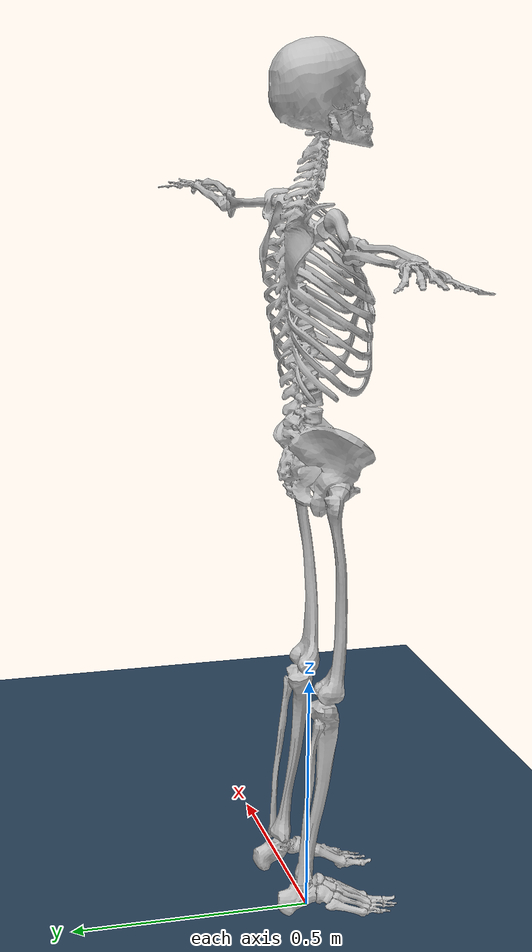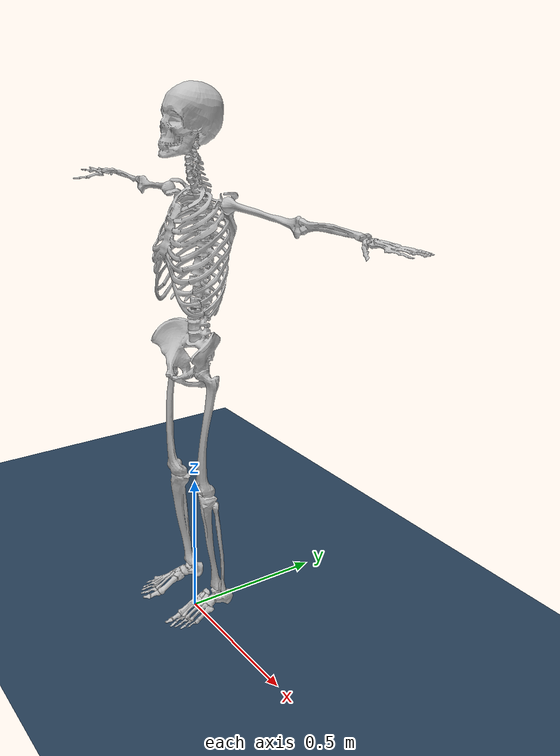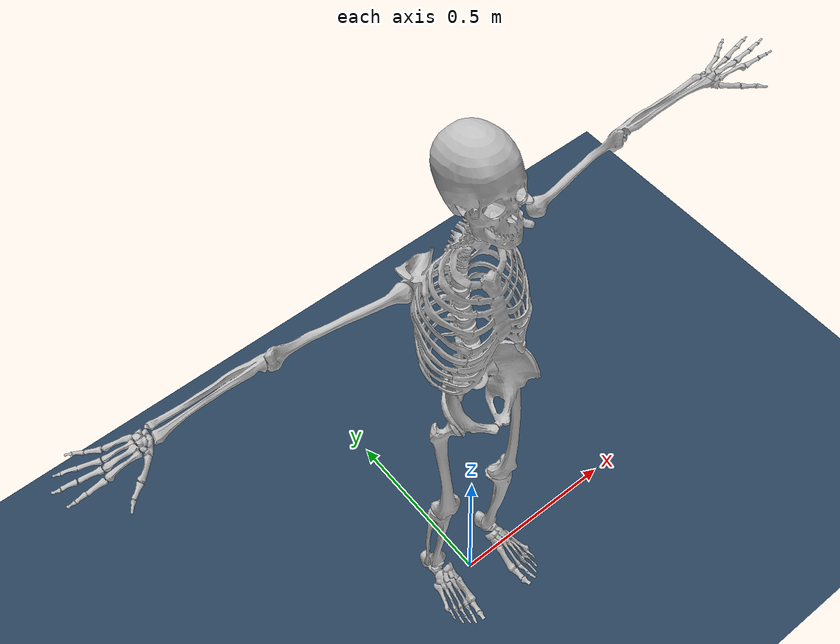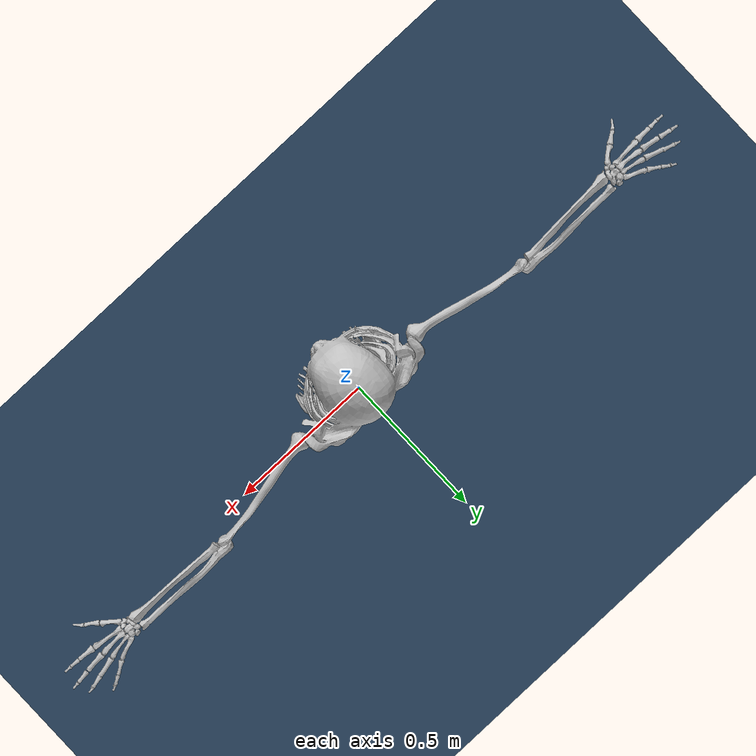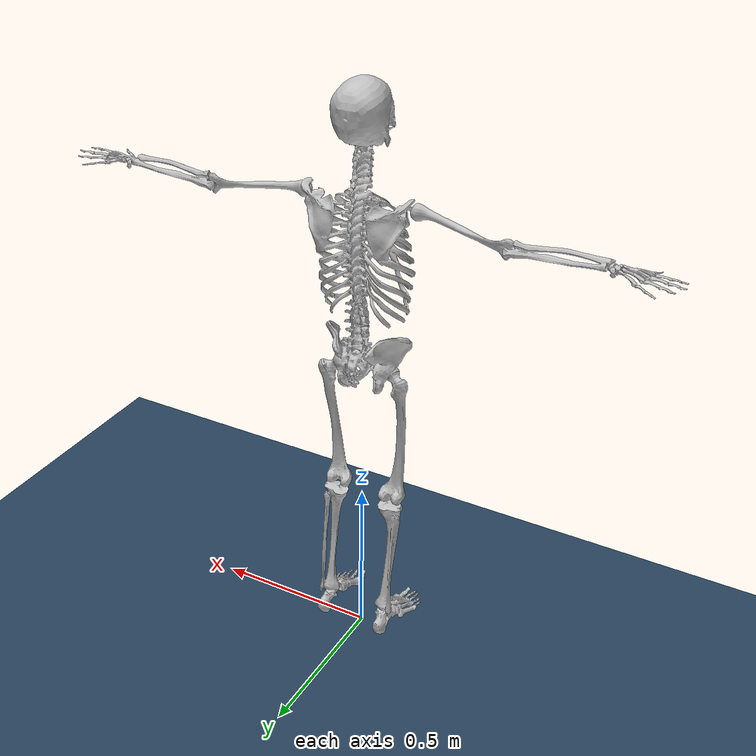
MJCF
<mujoco model="human_skeleton">
  <option iterations="50" timestep="0.001" solver="PGS" gravity="0 0 -9.81" />

  <compiler angle="radian" meshdir="meshes" eulerseq="zyx" autolimits="true" />

  <default>
    <joint limited="true" damping="0.01" armature="0.01" frictionloss="0.01" />
    <geom condim="4" contype="1" conaffinity="15" friction="0.9 0.2 0.2" solref="0.001 2" />
    <motor ctrllimited="true" forcelimited="true"/>
    <position ctrllimited="true" forcelimited="true"/>
    <default class="human_link">
      <geom material="human_link" condim="3" contype="2" conaffinity="0" />
    </default>
  </default>

  <asset>
    <mesh name="pelvis" content_type="model/stl" file="pelvis.stl" />
    <mesh name="torso" content_type="model/stl" file="torso.stl" />
    <mesh name="upper_arm_L" content_type="model/stl" file="upper_arm_L.stl" />
    <mesh name="forearm_L" content_type="model/stl" file="forearm_L.stl" />
    <mesh name="hand_L" content_type="model/stl" file="hand_L.stl" />
    <mesh name="upper_arm_R" content_type="model/stl" file="upper_arm_R.stl" />
    <mesh name="forearm_R" content_type="model/stl" file="forearm_R.stl" />
    <mesh name="hand_R" content_type="model/stl" file="hand_R.stl" />
    <mesh name="thigh_L" content_type="model/stl" file="thigh_L.stl" />
    <mesh name="shank_L" content_type="model/stl" file="shank_L.stl" />
    <mesh name="foot_L" content_type="model/stl" file="foot_L.stl" />
    <mesh name="thigh_R" content_type="model/stl" file="thigh_R.stl" />
    <mesh name="shank_R" content_type="model/stl" file="shank_R.stl" />
    <mesh name="foot_R" content_type="model/stl" file="foot_R.stl" />
    <material name="human_link" rgba="0.5 0.9 0.2 1" />
    <texture type="skybox" builtin="gradient" rgb1="0.52734375 0.8046875 0.91796875" rgb2="0 0 0" width="512" height="3072" />
    <texture name="grid" type="2d" builtin="checker" width="512" height="512" rgb1=".1 .2 .3" rgb2=".2 .3 .4" />
    <material name="grid" texture="grid" texrepeat="1 1" texuniform="true" reflectance=".2" />
  </asset>

  <worldbody>
    <light directional="true" diffuse="0.4 0.4 0.4" specular="0.1 0.1 0.1" pos="0 0 5.0" dir="0 0 -1" castshadow="false" />
    <light directional="true" diffuse="0.6 0.6 0.6" specular="0.2 0.2 0.2" pos="0 0 4" dir="0 0 -1" />
    <geom name="ground" type="plane" pos="0 0 0" size="100 100 0.001" quat="1 0 0 0" material="grid" condim="3" conaffinity="15" />
    <camera name="fixed" pos="0 -3.0 1.6444066293796307" xyaxes="1 0 0 0 0 1" />
    <camera name="track" mode="trackcom" pos="0 -3.0 1.6444066293796307" xyaxes="1 0 0 0 0 1" />
    <body name="root" pos="0 0 1.11" quat="0.7071 0.7071 0 0">
      <site name="imu" size="0.01" pos="0 0 0" />
      <geom pos="0 0.105 -0.01" quat="1 0 0 0" type="mesh" rgba="0.752941 0.752941 0.752941 1" mesh="pelvis" class="human_link" />
      <body name="link_torso">
        <inertial pos="0 0.24 -0.01" mass="27.3" diaginertia="0.4135 0.4135 0.4135" />
        <joint name="joint_waist" pos="0 0 0" axis="1 0 0" range="-3.1416 3.1416" actuatorfrcrange="-500 500" />
        <geom pos="0 0.105 -0.01" quat="1 0 0 0" type="mesh" rgba="0.752941 0.752941 0.752941 1" mesh="torso" class="human_link" />
        <body name="link_shoulder_L1" pos="0.17 0.34 -0.01">
          <inertial pos="0 0 0" mass="0.001" diaginertia="1e-06 1e-06 1e-06" />
          <joint name="joint_shoulder_L1" pos="0 0 0" axis="1 0 0" range="-3.1416 3.1416" actuatorfrcrange="-500 500" />
          <body name="link_shoulder_L2">
            <inertial pos="0 0 0" mass="0.001" diaginertia="1e-06 1e-06 1e-06" />
            <joint name="joint_shoulder_L2" pos="0 0 0" axis="0 0 1" range="-3.1416 3.1416" actuatorfrcrange="-500 500" />
            <body name="link_upper_arm_L">
              <inertial pos="0.13 0 0" mass="1.701" diaginertia="0.004 0.004 0.004" />
              <joint name="joint_shoulder_L3" pos="0 0 0" axis="1 0 0" range="-3.1416 3.1416" actuatorfrcrange="-500 500" />
              <geom pos="-0.17 -0.235 0" quat="1 0 0 0" type="mesh" rgba="0.752941 0.752941 0.752941 1" mesh="upper_arm_L" class="human_link" />
              <body name="link_elbow_L1" pos="0.27 -0.015 -0.05">
                <inertial pos="0 0 0" mass="0.001" diaginertia="1e-06 1e-06 1e-06" />
                <joint name="joint_elbow_L1" pos="0 0 0" axis="0 1 0" range="-3.1416 3.1416" actuatorfrcrange="-500 500" />
                <body name="link_forearm_L">
                  <inertial pos="0.12 0 0" mass="0.875" diaginertia="0.0013 0.0013 0.0013" />
                  <joint name="joint_elbow_L2" pos="0 0 0" axis="1 0 0" range="-3.1416 3.1416" actuatorfrcrange="-500 500" />
                  <geom pos="-0.44 -0.22 0.05" quat="1 0 0 0" type="mesh" rgba="0.752941 0.752941 0.752941 1" mesh="forearm_L" class="human_link" />
                  <body name="link_wrist_L1" pos="0.25 0.01 0">
                    <inertial pos="0 0 0" mass="0.001" diaginertia="1e-06 1e-06 1e-06" />
                    <joint name="joint_wrist_L1" pos="0 0 0" axis="0 1 0" range="-3.1416 3.1416" actuatorfrcrange="-500 500" />
                    <body name="link_hand_L">
                      <inertial pos="0.05 0 0" mass="0.448" diaginertia="0.00043717 0.00043717 0.00043717" />
                      <joint name="joint_wrist_L2" pos="0 0 0" axis="0 0 1" range="-3.1416 3.1416" actuatorfrcrange="-500 500" />
                      <geom pos="-0.69 -0.23 0.05" quat="1 0 0 0" type="mesh" rgba="0.752941 0.752941 0.752941 1" mesh="hand_L" class="human_link" />
                    </body>
                  </body>
                </body>
              </body>
            </body>
          </body>
        </body>
        <body name="link_shoulder_R1" pos="-0.17 0.34 -0.01">
          <inertial pos="0 0 0" mass="0.001" diaginertia="1e-06 1e-06 1e-06" />
          <joint name="joint_shoulder_R1" pos="0 0 0" axis="1 0 0" range="-3.1416 3.1416" actuatorfrcrange="-500 500" />
          <body name="link_shoulder_R2">
            <inertial pos="0 0 0" mass="0.001" diaginertia="1e-06 1e-06 1e-06" />
            <joint name="joint_shoulder_R2" pos="0 0 0" axis="0 0 1" range="-3.1416 3.1416" actuatorfrcrange="-500 500" />
            <body name="link_upper_arm_R">
              <inertial pos="-0.13 0 0" mass="1.701" diaginertia="0.004 0.004 0.004" />
              <joint name="joint_shoulder_R3" pos="0 0 0" axis="1 0 0" range="-3.1416 3.1416" actuatorfrcrange="-500 500" />
              <geom pos="0.17 -0.235 0" quat="1 0 0 0" type="mesh" rgba="0.752941 0.752941 0.752941 1" mesh="upper_arm_R" class="human_link" />
              <body name="link_elbow_R1" pos="-0.27 -0.015 -0.05">
                <inertial pos="0 0 0" mass="0.001" diaginertia="1e-06 1e-06 1e-06" />
                <joint name="joint_elbow_R1" pos="0 0 0" axis="0 1 0" range="-3.1416 3.1416" actuatorfrcrange="-500 500" />
                <body name="link_forearm_R">
                  <inertial pos="-0.12 0 0" mass="0.875" diaginertia="0.0013 0.0013 0.0013" />
                  <joint name="joint_elbow_R2" pos="0 0 0" axis="1 0 0" range="-3.1416 3.1416" actuatorfrcrange="-500 500" />
                  <geom pos="0.44 -0.22 0.05" quat="1 0 0 0" type="mesh" rgba="0.752941 0.752941 0.752941 1" mesh="forearm_R" class="human_link" />
                  <body name="link_wrist_R1" pos="-0.25 0.01 0">
                    <inertial pos="0 0 0" mass="0.001" diaginertia="1e-06 1e-06 1e-06" />
                    <joint name="joint_wrist_R1" pos="0 0 0" axis="0 1 0" range="-3.1416 3.1416" actuatorfrcrange="-500 500" />
                    <body name="link_hand_R">
                      <inertial pos="-0.05 0 0" mass="0.448" diaginertia="0.00043717 0.00043717 0.00043717" />
                      <joint name="joint_wrist_R2" pos="0 0 0" axis="0 0 1" range="-3.1416 3.1416" actuatorfrcrange="-500 500" />
                      <geom pos="0.69 -0.23 0.05" quat="1 0 0 0" type="mesh" rgba="0.752941 0.752941 0.752941 1" mesh="hand_R" class="human_link" />
                    </body>
                  </body>
                </body>
              </body>
            </body>
          </body>
        </body>
      </body>
      <body name="link_hip_L1" pos="0.08 -0.185 0.02">
        <inertial pos="0 0 0" mass="0.001" diaginertia="1e-06 1e-06 1e-06" />
        <joint name="joint_hip_L1" pos="0 0 0" axis="1 0 0" range="-3.1416 3.1416" actuatorfrcrange="-500 500" />
        <body name="link_hip_L2">
          <inertial pos="0 0 0" mass="0.001" diaginertia="1e-06 1e-06 1e-06" />
          <joint name="joint_hip_L2" pos="0 0 0" axis="0 0 1" range="-3.1416 3.1416" actuatorfrcrange="-500 500" />
          <body name="link_thigh_L">
            <inertial pos="0 -0.2 0" mass="9.933" diaginertia="0.0765 0.0765 0.0765" />
            <joint name="joint_hip_L3" pos="0 0 0" axis="0 1 0" range="-3.1416 3.1416" actuatorfrcrange="-500 500" />
            <geom pos="-0.08 0.29 -0.03" quat="1 0 0 0" type="mesh" rgba="0.752941 0.752941 0.752941 1" mesh="thigh_L" class="human_link" />
            <body name="link_shank_L" pos="0.01 -0.43 -0.01">
              <inertial pos="0 -0.17 0" mass="2.569" diaginertia="0.008 0.008 0.008" />
              <joint name="joint_knee_L" pos="0 0 0" axis="1 0 0" range="-3.1416 3.1416" actuatorfrcrange="-500 500" />
              <geom pos="-0.09 0.72 -0.02" quat="1 0 0 0" type="mesh" rgba="0.752941 0.752941 0.752941 1" mesh="shank_L" class="human_link" />
              <body name="link_ankle_L1" pos="0 -0.37 -0.045">
                <inertial pos="0 0 0" mass="0.001" diaginertia="1e-06 1e-06 1e-06" />
                <joint name="joint_ankle_L1" pos="0 0 0" axis="1 0 0" range="-3.1416 3.1416" actuatorfrcrange="-500 500" />
                <body name="link_foot_L">
                  <inertial pos="0 -0.1 0" mass="1.036" diaginertia="0.0018 0.0018 0.0018" />
                  <joint name="joint_ankle_L2" pos="0 0 0" axis="0 0 1" range="-3.1416 3.1416" actuatorfrcrange="-500 500" />
                  <geom pos="-0.09 1.09 0.025" quat="1 0 0 0" type="mesh" rgba="0.752941 0.752941 0.752941 1" mesh="foot_L" class="human_link" />
                </body>
              </body>
            </body>
          </body>
        </body>
      </body>
      <body name="link_hip_R1" pos="-0.08 -0.185 0.02">
        <inertial pos="0 0 0" mass="0.001" diaginertia="1e-06 1e-06 1e-06" />
        <joint name="joint_hip_R1" pos="0 0 0" axis="1 0 0" range="-3.1416 3.1416" actuatorfrcrange="-500 500" />
        <body name="link_hip_R2">
          <inertial pos="0 0 0" mass="0.001" diaginertia="1e-06 1e-06 1e-06" />
          <joint name="joint_hip_R2" pos="0 0 0" axis="0 0 1" range="-3.1416 3.1416" actuatorfrcrange="-500 500" />
          <body name="link_thigh_R">
            <inertial pos="0 -0.2 0" mass="9.933" diaginertia="0.0765 0.0765 0.0765" />
            <joint name="joint_hip_R3" pos="0 0 0" axis="0 1 0" range="-3.1416 3.1416" actuatorfrcrange="-500 500" />
            <geom pos="0.08 0.29 -0.03" quat="1 0 0 0" type="mesh" rgba="0.752941 0.752941 0.752941 1" mesh="thigh_R" class="human_link" />
            <body name="link_shank_R" pos="-0.01 -0.43 -0.01">
              <inertial pos="0 -0.17 0" mass="2.569" diaginertia="0.008 0.008 0.008" />
              <joint name="joint_knee_R" pos="0 0 0" axis="1 0 0" range="-3.1416 3.1416" actuatorfrcrange="-500 500" />
              <geom pos="0.09 0.72 -0.02" quat="1 0 0 0" type="mesh" rgba="0.752941 0.752941 0.752941 1" mesh="shank_R" class="human_link" />
              <body name="link_ankle_R1" pos="0 -0.37 -0.045">
                <inertial pos="0 0 0" mass="0.001" diaginertia="1e-06 1e-06 1e-06" />
                <joint name="joint_ankle_R1" pos="0 0 0" axis="1 0 0" range="-3.1416 3.1416" actuatorfrcrange="-500 500" />
                <body name="link_foot_R">
                  <inertial pos="0 -0.1 0" mass="1.036" diaginertia="0.0018 0.0018 0.0018" />
                  <joint name="joint_ankle_R2" pos="0 0 0" axis="0 0 1" range="-3.1416 3.1416" actuatorfrcrange="-500 500" />
                  <geom pos="0.09 1.09 0.025" quat="1 0 0 0" type="mesh" rgba="0.752941 0.752941 0.752941 1" mesh="foot_R" class="human_link" />
                </body>
              </body>
            </body>
          </body>
        </body>
      </body>
    </body>
  </worldbody>

  <actuator>
    <position name="joint_waist"       joint="joint_waist"       ctrllimited="true" ctrlrange="-3.1415 3.1416" forcerange="-500 500" kp="1000" kv="10"/>
    <position name="joint_shoulder_L1" joint="joint_shoulder_L1" ctrllimited="true" ctrlrange="-3.1415 3.1416" forcerange="-500 500" kp="1000" kv="10"/>
    <position name="joint_shoulder_L2" joint="joint_shoulder_L2" ctrllimited="true" ctrlrange="-3.1415 3.1416" forcerange="-500 500" kp="1000" kv="10"/>
    <position name="joint_shoulder_L3" joint="joint_shoulder_L3" ctrllimited="true" ctrlrange="-3.1415 3.1416" forcerange="-500 500" kp="1000" kv="10"/>
    <position name="joint_elbow_L1"    joint="joint_elbow_L1"    ctrllimited="true" ctrlrange="-3.1415 3.1416" forcerange="-500 500" kp="1000" kv="10"/>
    <position name="joint_elbow_L2"    joint="joint_elbow_L2"    ctrllimited="true" ctrlrange="-3.1415 3.1416" forcerange="-500 500" kp="1000" kv="10"/>
    <position name="joint_wrist_L1"    joint="joint_wrist_L1"    ctrllimited="true" ctrlrange="-3.1415 3.1416" forcerange="-500 500" kp="1000" kv="10"/>
    <position name="joint_wrist_L2"    joint="joint_wrist_L2"    ctrllimited="true" ctrlrange="-3.1415 3.1416" forcerange="-500 500" kp="1000" kv="10"/>
    <position name="joint_shoulder_R1" joint="joint_shoulder_R1" ctrllimited="true" ctrlrange="-3.1415 3.1416" forcerange="-500 500" kp="1000" kv="10"/>
    <position name="joint_shoulder_R2" joint="joint_shoulder_R2" ctrllimited="true" ctrlrange="-3.1415 3.1416" forcerange="-500 500" kp="1000" kv="10"/>
    <position name="joint_shoulder_R3" joint="joint_shoulder_R3" ctrllimited="true" ctrlrange="-3.1415 3.1416" forcerange="-500 500" kp="1000" kv="10"/>
    <position name="joint_elbow_R1"    joint="joint_elbow_R1"    ctrllimited="true" ctrlrange="-3.1415 3.1416" forcerange="-500 500" kp="1000" kv="10"/>
    <position name="joint_elbow_R2"    joint="joint_elbow_R2"    ctrllimited="true" ctrlrange="-3.1415 3.1416" forcerange="-500 500" kp="1000" kv="10"/>
    <position name="joint_wrist_R1"    joint="joint_wrist_R1"    ctrllimited="true" ctrlrange="-3.1415 3.1416" forcerange="-500 500" kp="1000" kv="10"/>
    <position name="joint_wrist_R2"    joint="joint_wrist_R2"    ctrllimited="true" ctrlrange="-3.1415 3.1416" forcerange="-500 500" kp="1000" kv="10"/>
    <position name="joint_hip_L1"      joint="joint_hip_L1"      ctrllimited="true" ctrlrange="-3.1415 3.1416" forcerange="-500 500" kp="1000" kv="10"/>
    <position name="joint_hip_L2"      joint="joint_hip_L2"      ctrllimited="true" ctrlrange="-3.1415 3.1416" forcerange="-500 500" kp="1000" kv="10"/>
    <position name="joint_hip_L3"      joint="joint_hip_L3"      ctrllimited="true" ctrlrange="-3.1415 3.1416" forcerange="-500 500" kp="1000" kv="10"/>
    <position name="joint_knee_L"      joint="joint_knee_L"      ctrllimited="true" ctrlrange="-3.1415 3.1416" forcerange="-500 500" kp="1000" kv="10"/>
    <position name="joint_ankle_L1"    joint="joint_ankle_L1"    ctrllimited="true" ctrlrange="-3.1415 3.1416" forcerange="-500 500" kp="1000" kv="10"/>
    <position name="joint_ankle_L2"    joint="joint_ankle_L2"    ctrllimited="true" ctrlrange="-3.1415 3.1416" forcerange="-500 500" kp="1000" kv="10"/>
    <position name="joint_hip_R1"      joint="joint_hip_R1"      ctrllimited="true" ctrlrange="-3.1415 3.1416" forcerange="-500 500" kp="1000" kv="10"/>
    <position name="joint_hip_R2"      joint="joint_hip_R2"      ctrllimited="true" ctrlrange="-3.1415 3.1416" forcerange="-500 500" kp="1000" kv="10"/>
    <position name="joint_hip_R3"      joint="joint_hip_R3"      ctrllimited="true" ctrlrange="-3.1415 3.1416" forcerange="-500 500" kp="1000" kv="10"/>
    <position name="joint_knee_R"      joint="joint_knee_R"      ctrllimited="true" ctrlrange="-3.1415 3.1416" forcerange="-500 500" kp="1000" kv="10"/>
    <position name="joint_ankle_R1"    joint="joint_ankle_R1"    ctrllimited="true" ctrlrange="-3.1415 3.1416" forcerange="-500 500" kp="1000" kv="10"/>
    <position name="joint_ankle_R2"    joint="joint_ankle_R2"    ctrllimited="true" ctrlrange="-3.1415 3.1416" forcerange="-500 500" kp="1000" kv="10"/>
  </actuator>

</mujoco>
